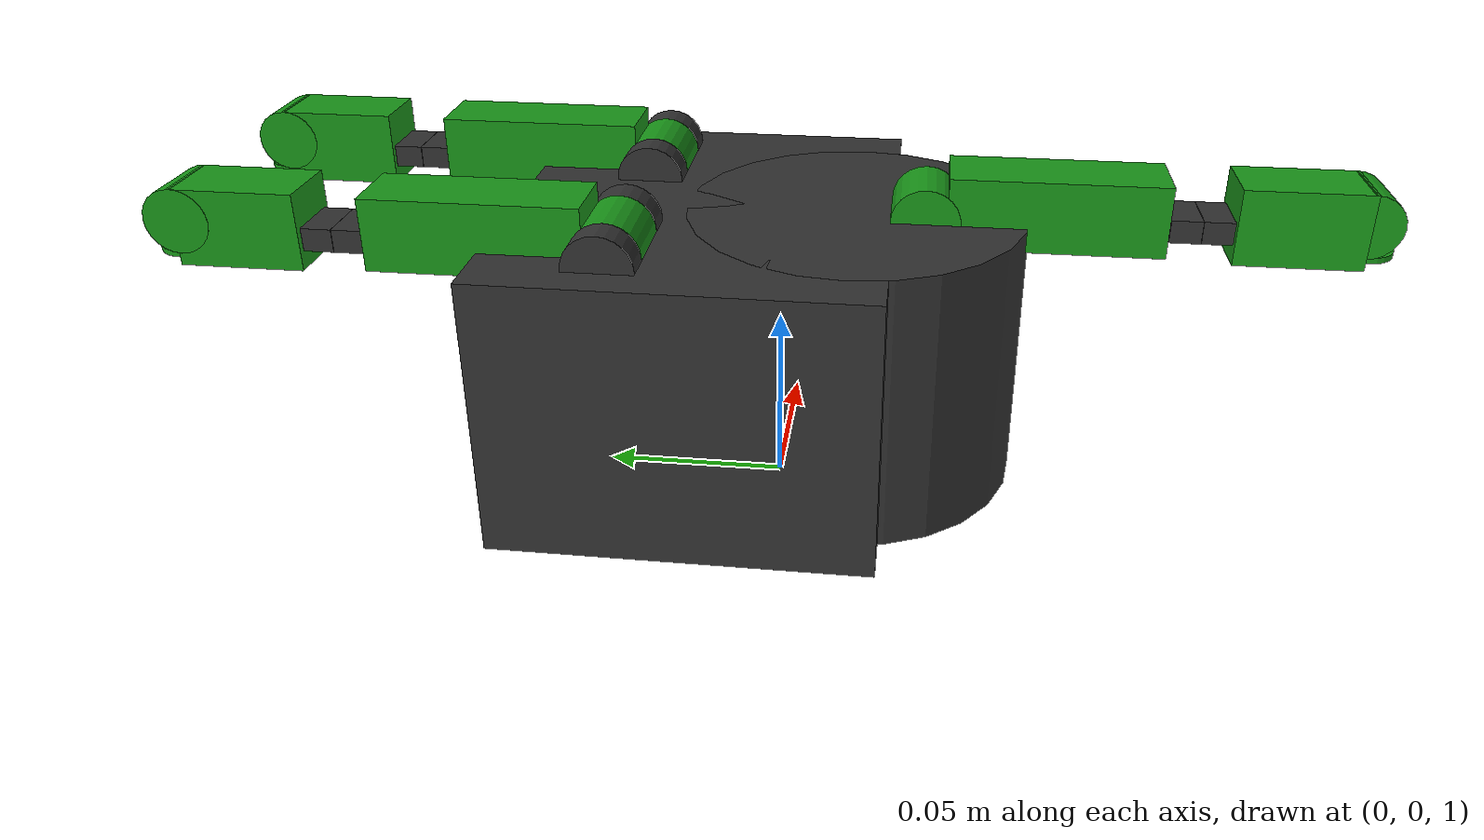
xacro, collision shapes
<robot xmlns:xacro="http://www.ros.org/wiki/xacro" name="atlas" >
  <xacro:include filename="$(find irobot_hand_description)/urdf/irobot_hand.urdf.xacro" />

  <link name="world"/>

  <xacro:irobot_hand side="left" parent="world" reflect="-1">
    <origin rpy="0 0 0" xyz="0 0 1.0"/>
  </xacro:irobot_hand>
</robot>

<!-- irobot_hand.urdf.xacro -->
<robot xmlns:xacro="http://www.ros.org/wiki/xacro" name="armh_handle">

<!-- roslaunch urdf_tutorial display.launch model:=handle.urdf gui:=True -->
<!-- rosrun xacro xacro.py handle_urdf.xacro > handle.urdf -->
<!-- tip: use measurements from solid to find the origins and length -->

<xacro:property name="flex_joint_length" value=".016" />
<xacro:property name="flex_joint_steps" value="2" />
<xacro:property name="proximal_link_length" value=".062" />
<xacro:property name="pi" value="3.14" />
<xacro:property name="flex_offset" value="0.003"/> <!--${0.5*flex_joint_length/flex_joint_steps}-->

<xacro:macro name="flex_link" params="side finger_id link_id">
  <link name="${side}_finger[${finger_id}]/flexible_link_${link_id}">
    <inertial>
      <mass value="${0.0029 / (2 * flex_joint_steps + 1)}"/>
      <!-- gazebo -> cad mapping
           x -> y
           y -> z
           z -> x
      -->
      <origin xyz="0 0 0" rpy="${-pi/2} ${-pi/2} 0"/>
      <inertia ixx="8.8101e-8" ixy="0" ixz="0.0"
               iyy="${2.04906e-7 / (2 * flex_joint_steps + 1)}" iyz="0.0"
               izz="${2.65921e-7 / (2 * flex_joint_steps + 1)}"/>
    </inertial>
    <collision>
      <geometry>
        <box size=".014 ${(flex_joint_length/flex_joint_steps)*0.99} .006"/>
      </geometry>
      <origin xyz="0 0 0" rpy="${pi/2} 0 0"/>
    </collision>
    <visual>
      <geometry>
        <box size=".014 ${(flex_joint_length/flex_joint_steps)*0.99} .006"/>
      </geometry>
      <origin xyz="0 0 0" rpy="${pi/2} 0 0"/>
      <material name="darkgray">
        <color rgba="0.2 0.2 0.2 1"/>
      </material>
    </visual>
  </link>

</xacro:macro>

<xacro:macro name="flex_joint" params="side finger_id link_from link_to">
  <gazebo reference="${side}_finger[${finger_id}]/flexible_joint_flex_from_${link_from}_to_${link_to}">
    <implicitSpringDamper>1</implicitSpringDamper>
  </gazebo>
  <joint name="${side}_finger[${finger_id}]/flexible_joint_flex_from_${link_from}_to_${link_to}" type="revolute">
    <parent link="${side}_finger[${finger_id}]/flexible_link_${link_from}"/>
    <child link="${side}_finger[${finger_id}]/flexible_link_hidden_between_${link_from}_and_${link_to}"/>
    <origin xyz="0 0 ${flex_joint_length/flex_joint_steps}" />
    <axis xyz="-1 0 0"/>
    <limit effort="1000.0" lower="0.0" upper="${pi/2}" velocity="0.5"/>
  </joint>
  <link name="${side}_finger[${finger_id}]/flexible_link_hidden_between_${link_from}_and_${link_to}">
    <inertial>
      <mass value="${0.0029 / (2 * flex_joint_steps + 1)}"/>
      <!-- gazebo -> cad mapping
           x -> y
           y -> z
           z -> x
      -->
      <origin xyz="0 0 0" rpy="${-pi/2} ${-pi/2} 0"/>
      <inertia ixx="8.8101e-8" ixy="0" ixz="0.0"
               iyy="${2.04906e-7 / (2 * flex_joint_steps + 1)}" iyz="0.0"
               izz="${2.65921e-7 / (2 * flex_joint_steps + 1)}"/>
    </inertial>
    <collision>
      <geometry>
        <box size="0 0 0"/>
      </geometry>
      <origin xyz="0 0 0" rpy="0 0 0"/>
    </collision>
    <visual>
      <geometry>
        <box size="0 0 0"/>
      </geometry>
      <origin xyz="0 0 0" rpy="0 0 0"/>
    </visual>
  </link>
  <gazebo reference="${side}_finger[${finger_id}]/flexible_joint_twist_from_${link_from}_to_${link_to}">
    <implicitSpringDamper>1</implicitSpringDamper>
  </gazebo>
  <joint name="${side}_finger[${finger_id}]/flexible_joint_twist_from_${link_from}_to_${link_to}" type="revolute">
    <parent link="${side}_finger[${finger_id}]/flexible_link_hidden_between_${link_from}_and_${link_to}"/>
    <child link="${side}_finger[${finger_id}]/flexible_link_${link_to}"/>
    <origin xyz="0 0 0" />
    <axis xyz="0 0 1"/>
    <limit effort="1000.0" lower="0.0" upper="${pi/2}" velocity="0.5"/>
  </joint>
</xacro:macro>

<xacro:macro name="flex_joint_connector" params="side finger_id">

  <!-- make a connection between proximal to flexible-->
  <gazebo reference="${side}_finger[${finger_id}]/flexible_joint_flex_from_proximal_to_1">
    <implicitSpringDamper>1</implicitSpringDamper>
  </gazebo>
  <joint name="${side}_finger[${finger_id}]/flexible_joint_flex_from_proximal_to_1" type="revolute">
    <parent link="${side}_finger[${finger_id}]/proximal_link"/>
    <child link="${side}_finger[${finger_id}]/flexible_link_hidden_between_proximal_link_and_1"/>
    <origin xyz="0 0 ${proximal_link_length + flex_offset}" />
    <axis xyz="-1 0 0"/>
    <limit effort="1000.0" lower="0.0" upper="${pi/2}" velocity="0.5"/>
  </joint>
  <link name="${side}_finger[${finger_id}]/flexible_link_hidden_between_proximal_link_and_1">
    <inertial>
      <mass value="${0.0029 / (2 * flex_joint_steps + 1)}"/>
      <!-- gazebo -> cad mapping
           x -> y
           y -> z
           z -> x
      -->
      <origin xyz="0 0 0" rpy="${-pi/2} ${-pi/2} 0"/>
      <inertia ixx="8.8101e-8" ixy="0" ixz="0.0"
               iyy="${2.04906e-7 / (2 * flex_joint_steps + 1)}" iyz="0.0"
               izz="${2.65921e-7 / (2 * flex_joint_steps + 1)}"/>
    </inertial>
    <collision>
      <geometry>
        <box size="0 0 0"/>
      </geometry>
      <origin xyz="0 0 0" rpy="0 0 0"/>
    </collision>
    <visual>
      <geometry>
        <box size="0 0 0"/>
      </geometry>
      <origin xyz="0 0 0" rpy="0 0 0"/>
    </visual>
  </link>
  <gazebo reference="${side}_finger[${finger_id}]/flexible_joint_twist_from_proximal_to_1">
    <implicitSpringDamper>1</implicitSpringDamper>
  </gazebo>
  <joint name="${side}_finger[${finger_id}]/flexible_joint_twist_from_proximal_to_1" type="revolute">
    <parent link="${side}_finger[${finger_id}]/flexible_link_hidden_between_proximal_link_and_1"/>
    <child link="${side}_finger[${finger_id}]/flexible_link_1"/>
    <origin xyz="0 0 0" />
    <axis xyz="0 0 1"/>
    <limit effort="1000.0" lower="0.0" upper="${pi/2}" velocity="0.5"/>
  </joint>

  <!-- make a connection between flexible to distal-->
  <gazebo reference="${side}_finger[${finger_id}]/flexible_joint_flex_from_${flex_joint_steps}_to_distal">
    <implicitSpringDamper>1</implicitSpringDamper>
  </gazebo>
  <joint name="${side}_finger[${finger_id}]/flexible_joint_flex_from_${flex_joint_steps}_to_distal" type="revolute">
    <parent link="${side}_finger[${finger_id}]/flexible_link_${flex_joint_steps}"/>
    <child link="${side}_finger[${finger_id}]/flexible_link_hidden_between_${flex_joint_steps}_and_distal_link"/>
    <origin xyz="0 0 ${flex_joint_length/flex_joint_steps - flex_offset}" />
    <axis xyz="-1 0 0"/>
    <limit effort="1000.0" lower="0.0" upper="${pi/2}" velocity="0.5"/>
  </joint>
  <link name="${side}_finger[${finger_id}]/flexible_link_hidden_between_${flex_joint_steps}_and_distal_link">
    <inertial>
      <mass value="${0.0029 / (2 * flex_joint_steps + 1)}"/>
      <!-- gazebo -> cad mapping
           x -> y
           y -> z
           z -> x
      -->
      <origin xyz="0 0 0" rpy="${-pi/2} ${-pi/2} 0"/>
      <inertia ixx="8.8101e-8" ixy="0" ixz="0.0"
               iyy="${2.04906e-7 / (2 * flex_joint_steps + 1)}" iyz="0.0"
               izz="${2.65921e-7 / (2 * flex_joint_steps + 1)}"/>
    </inertial>
    <collision>
      <geometry>
        <box size="0 0 0"/>
      </geometry>
      <origin xyz="0 0 0" rpy="0 0 0"/>
    </collision>
    <visual>
      <geometry>
        <box size="0 0 0"/>
      </geometry>
      <origin xyz="0 0 0" rpy="0 0 0"/>
    </visual>
  </link>
  <gazebo reference="${side}_finger[${finger_id}]/flexible_joint_twist_from_${flex_joint_steps}_to_distal">
    <implicitSpringDamper>1</implicitSpringDamper>
  </gazebo>
  <joint name="${side}_finger[${finger_id}]/flexible_joint_twist_from_${flex_joint_steps}_to_distal" type="revolute">
    <parent link="${side}_finger[${finger_id}]/flexible_link_hidden_between_${flex_joint_steps}_and_distal_link"/>
    <child link="${side}_finger[${finger_id}]/distal_link"/>
    <origin xyz="0 0 0" />
    <axis xyz="0 0 1"/>
    <limit effort="1000.0" lower="0.0" upper="${pi/2}" velocity="0.5"/>
  </joint>
</xacro:macro>

<!-- Simplified collisions for the base_rotation_links on fingers 0 and 1 -->
<xacro:macro name="base_rotation_link_collisions">
      <collision name='collision_1'>
        <origin xyz="0 0 -.0025" rpy="0 0 0"/>
        <geometry>
          <cylinder length="0.0145" radius="0.025"/>
        </geometry>
      </collision>

      <collision name='collision_2'>
        <origin xyz="0 0 -.0104" rpy="0 0 0"/>
        <geometry>
          <cylinder length="0.0145" radius="0.0165"/>
        </geometry>
      </collision>

      <collision name='collision_3'>
        <origin xyz="0 0 .0135" rpy="1.5707 0 1.5707"/>
        <geometry>
          <cylinder length="0.02" radius="0.002"/>
        </geometry>
      </collision>

      <collision name='collision_4'>
        <origin xyz="0.013 0 .0135" rpy="1.5707 0 1.5707"/>
        <geometry>
          <cylinder length="0.008" radius="0.009"/>
        </geometry>
      </collision>

      <collision name='collision_5'>
        <origin xyz="-0.013 0 .0135" rpy="1.5707 0 1.5707"/>
        <geometry>
          <cylinder length="0.008" radius="0.009"/>
        </geometry>
      </collision>
</xacro:macro>

<!-- Simplified collisions for the proximal_link on all fingers -->
<xacro:macro name="proximal_link_collisions">
      <collision name='collision1'>
        <origin xyz="0 0.0028 0.033" rpy="0 0 0"/>
        <geometry>
          <box size="0.018 0.019 0.055"/>
        </geometry>
      </collision>

      <collision name='collision2'>
        <origin xyz="0 0 0" rpy="0 1.5707 0"/>
        <geometry>
          <cylinder radius="0.009" length="0.018"/>
        </geometry>
      </collision>
</xacro:macro>

<!-- Simplified collisions for the distal_link on all fingers -->
<xacro:macro name="distal_link_collisions">
      <collision name='collision'>
        <origin xyz="0 0.0024 0.01476" rpy="3.141590 0.001593
             3.141590"/>
        <geometry>
          <box size="0.0175 0.02011 0.03195"/>
        </geometry>
      </collision>
      <collision name='collision_tip'>
        <origin xyz="0 0.004 0.03" rpy="1.57078 0.001593 1.57078"/>
        <geometry>
          <cylinder radius="0.00848" length="0.0175"/>
        </geometry>
      </collision>

      <collision name='collision_nail'>
        <origin xyz="0 -0.00529 0.032" rpy="1.57078 0.001593 0"/>
        <geometry>
          <cylinder radius="0.00750" length="0.00159"/>
        </geometry>
      </collision>
</xacro:macro>

<xacro:macro name="irobot_hand" params="side parent reflect *origin">
  <xacro:flex_link side="${side}" finger_id="0" link_id="1"/>
  <xacro:flex_link side="${side}" finger_id="0" link_id="2"/>
  <xacro:flex_joint side="${side}" finger_id="0" link_from="1" link_to="2"/>
  <xacro:flex_joint_connector side="${side}" finger_id="0" />

  <xacro:flex_link side="${side}" finger_id="1" link_id="1"/>
  <xacro:flex_link side="${side}" finger_id="1" link_id="2"/>
  <xacro:flex_joint side="${side}" finger_id="1" link_from="1" link_to="2"/>
  <xacro:flex_joint_connector side="${side}" finger_id="1" />

  <xacro:flex_link side="${side}" finger_id="2" link_id="1"/>
  <xacro:flex_link side="${side}" finger_id="2" link_id="2"/>
  <xacro:flex_joint side="${side}" finger_id="2" link_from="1" link_to="2"/>
  <xacro:flex_joint_connector side="${side}" finger_id="2" />

  <!-- joint attaching parent link to irobot hand -->
  <joint name="${side}_irobot_hand_joint" type="fixed">
    <xacro:insert_block name="origin"/>
    <parent link="${parent}"/>
    <child link="${side}_base_link"/>
  </joint>

  <link name="${side}_base_link">
      <inertial>
        <!-- needs update -->
        <mass value="1.305"/>
        <origin xyz="0 0 0"/>
        <inertia ixx="0.00125" ixy="0.0" ixz="0.0" iyy="0.00125" iyz="0.0" izz="0.0002"/>
      </inertial>

    <collision name='collision1'>
      <origin xyz="0 0.02 0.045" rpy="0 0 0"/>
      <geometry>
        <box size="0.114 0.1 0.075"/>
      </geometry>
    </collision>

    <collision name='collision2'>
      <origin xyz="0 -0.02 0.045" rpy="0 0 0"/>
      <geometry>
        <cylinder radius="0.0448" length="0.075"/>
      </geometry>
    </collision>

    <visual>
      <geometry>
        <mesh filename="package://irobot_hand_description/meshes/palm.stl"/>
      </geometry>
      <material name="darkgray">
        <color rgba="0.2 0.2 0.2 1"/>
      </material>
      <origin rpy="0 0 0" xyz="0 -0.038 -0.023"/>
    </visual>
  </link>

  <link name="${side}_finger[0]/base_rotation_link">
      <inertial>
        <!-- needs update -->
        <mass value="0.05"/>
        <origin xyz="0 0 0"/>
        <inertia ixx="0.0000125" ixy="0.0" ixz="0.0" iyy="0.0000125" iyz="0.0" izz="0.000002"/>
      </inertial>

    <xacro:base_rotation_link_collisions/>

    <visual>
      <geometry>
        <mesh filename="package://irobot_hand_description/meshes/finger_base.stl"/>
      </geometry>
      <material name="darkgray">
        <color rgba="0.2 0.2 0.2 1"/>
      </material>
      <origin rpy="${pi/2} 0 0" xyz="0 0 0"/>
    </visual>
  </link>

  <link name="${side}_finger[0]/proximal_link">
      <inertial>
        <mass value="0.0288"/>
        <!-- gazebo -> cad coordinate mapping
             x -> -y
             y -> -z
             z -> x
        -->
        <origin xyz="-0.002630 0.002396 0.021770" rpy="${pi/2} -${pi/2} 0"/>
        <inertia ixx="2.420689e-6" ixy="0" ixz="0" iyy="1.196202e-6" iyz="0" izz="1.2736461e-6"/>
      </inertial>

    <xacro:proximal_link_collisions/>

    <visual>
      <geometry>
        <mesh filename="package://irobot_hand_description/meshes/finger_proximal.stl"/>
      </geometry>
      <material name="green">
        <color rgba="0.1 0.6 0.1 1"/>
      </material>
      <origin rpy="${pi/2} -${pi/2} 0" xyz="0 0 0"/>
    </visual>
  </link>

  <link name="${side}_finger[0]/proximal_accelerometer" />

  <joint name="${side}_finger[0]/proximal_link_to_accelerometer" type="fixed">
    <parent link="${side}_finger[0]/proximal_link"/>
    <child link="${side}_finger[0]/proximal_accelerometer"/>
    <origin rpy="${pi/2} 0 0" xyz="0 0 0.05" />
  </joint>

  <link name="${side}_finger[0]/distal_link">
      <inertial>
        <mass value="0.0133"/>
        <!-- gazebo -> cad mapping
             x -> -x
             y -> y
             z -> -z
        -->
        <origin xyz="-0.000066 -0.003142 0.016633" rpy="0 ${pi} 0" />
        <inertia ixx="1.624140e-6" ixy="5.60e-10" ixz="1.33e-10" iyy="1.717885e-6" iyz="-1.19970e-7" izz="5.60221e-7"/>
      </inertial>

    <xacro:distal_link_collisions/>

    <visual>
      <geometry>
        <mesh filename="package://irobot_hand_description/meshes/finger_distal.stl"/>
      </geometry>
      <material name="green">
        <color rgba="0.1 0.6 0.1 1"/>
      </material>
      <origin rpy="0 ${pi} 0" xyz="0 0 0"/>
    </visual>
  </link>

  <link name="${side}_finger[0]/distal_accelerometer" />

  <joint name="${side}_finger[0]/distal_link_to_accelerometer" type="fixed">
    <parent link="${side}_finger[0]/distal_link"/>
    <child link="${side}_finger[0]/distal_accelerometer"/>
    <origin rpy="${pi/2} 0 0" xyz="0 0 0.02" />
  </joint>

  <link name="${side}_finger[1]/base_rotation_link">
      <inertial>
        <mass value="0.05"/>
        <origin xyz="0 0 0"/>
        <inertia ixx="0.0000125" ixy="0.0" ixz="0.0" iyy="0.0000125" iyz="0.0" izz="0.000002"/>
      </inertial>

    <xacro:base_rotation_link_collisions/>

    <visual>
      <geometry>
        <mesh filename="package://irobot_hand_description/meshes/finger_base.stl"/>
      </geometry>
      <material name="darkgray">
        <color rgba="0.2 0.2 0.2 1"/>
      </material>
      <origin rpy="${pi/2} 0 0" xyz="0 0 0"/>
    </visual>
  </link>

  <link name="${side}_finger[1]/proximal_link">
      <inertial>
        <mass value="0.0288"/>
        <!-- gazebo -> cad coordinate mapping
             x -> -y
             y -> -z
             z -> x
        -->
        <origin xyz="-0.002630 0.002396 0.021770" rpy="${pi/2} -${pi/2} 0"/>
        <inertia ixx="2.420689e-6" ixy="0" ixz="0" iyy="1.196202e-6" iyz="0" izz="1.2736461e-6"/>
      </inertial>

    <xacro:proximal_link_collisions/>

    <visual>
      <geometry>
        <mesh filename="package://irobot_hand_description/meshes/finger_proximal.stl"/>
      </geometry>
      <material name="green">
        <color rgba="0.1 0.6 0.1 1"/>
      </material>
      <origin rpy="${pi/2} -${pi/2} 0" xyz="0 0 0"/>
    </visual>
  </link>

  <link name="${side}_finger[1]/proximal_accelerometer" />

  <joint name="${side}_finger[1]/proximal_link_to_accelerometer" type="fixed">
    <parent link="${side}_finger[1]/proximal_link"/>
    <child link="${side}_finger[1]/proximal_accelerometer"/>
    <origin rpy="${pi/2} 0 0" xyz="0 0 0.05" />
  </joint>

  <link name="${side}_finger[1]/distal_link">
      <inertial>
        <mass value="0.0133"/>
        <!-- gazebo -> cad mapping
             x -> -x
             y -> y
             z -> -z
        -->
        <origin xyz="-0.000066 -0.003142 0.016633" rpy="0 ${pi} 0" />
        <inertia ixx="1.624140e-6" ixy="5.60e-10" ixz="1.33e-10" iyy="1.717885e-6" iyz="-1.19970e-7" izz="5.60221e-7"/>
      </inertial>

    <xacro:distal_link_collisions/>

    <visual>
      <geometry>
        <mesh filename="package://irobot_hand_description/meshes/finger_distal.stl"/>
      </geometry>
      <material name="green">
        <color rgba="0.1 0.6 0.1 1"/>
      </material>
      <origin rpy="0 ${pi} 0" xyz="0 0 0"/>
    </visual>
  </link>

  <link name="${side}_finger[1]/distal_accelerometer" />

  <joint name="${side}_finger[1]/distal_link_to_accelerometer" type="fixed">
    <parent link="${side}_finger[1]/distal_link"/>
    <child link="${side}_finger[1]/distal_accelerometer"/>
    <origin rpy="${pi/2} 0 0" xyz="0 0 0.02" />
  </joint>

  <link name="${side}_finger[2]/proximal_link">
      <inertial>
        <mass value="0.0288"/>
        <!-- gazebo -> cad coordinate mapping
             x -> -y
             y -> -z
             z -> x
        -->
        <origin xyz="-0.002630 0.002396 0.021770" rpy="${pi/2} -${pi/2} 0"/>
        <inertia ixx="2.420689e-6" ixy="0" ixz="0" iyy="1.196202e-6" iyz="0" izz="1.2736461e-6"/>
      </inertial>

    <xacro:proximal_link_collisions/>

    <visual>
      <geometry>
        <mesh filename="package://irobot_hand_description/meshes/finger_proximal.stl"/>
      </geometry>
      <material name="green">
        <color rgba="0.1 0.6 0.1 1"/>
      </material>
      <origin rpy="${pi/2} -${pi/2} 0" xyz="0 0 0"/>
    </visual>
  </link>

  <link name="${side}_finger[2]/proximal_accelerometer" />

  <joint name="${side}_finger[2]/proximal_link_to_accelerometer" type="fixed">
    <parent link="${side}_finger[2]/proximal_link"/>
    <child link="${side}_finger[2]/proximal_accelerometer"/>
    <origin rpy="${pi/2} 0 0" xyz="0 0 0.05" />
  </joint>

  <link name="${side}_finger[2]/distal_link">
      <inertial>
        <mass value="0.0133"/>
        <!-- gazebo -> cad mapping
             x -> -x
             y -> y
             z -> -z
        -->
        <origin xyz="-0.000066 -0.003142 0.016633" rpy="0 ${pi} 0" />
        <inertia ixx="1.624140e-6" ixy="5.60e-10" ixz="1.33e-10" iyy="1.717885e-6" iyz="-1.19970e-7" izz="5.60221e-7"/>
      </inertial>

    <xacro:distal_link_collisions/>

    <visual>
      <geometry>
        <mesh filename="package://irobot_hand_description/meshes/finger_distal.stl"/>
      </geometry>
      <material name="green">
        <color rgba="0.1 0.6 0.1 1"/>
      </material>
      <origin rpy="0 ${pi} 0" xyz="0 0 0"/>
    </visual>
  </link>

  <link name="${side}_finger[2]/distal_accelerometer" />

  <joint name="${side}_finger[2]/distal_link_to_accelerometer" type="fixed">
    <parent link="${side}_finger[2]/distal_link"/>
    <child link="${side}_finger[2]/distal_accelerometer"/>
    <origin rpy="${pi/2} 0 0" xyz="0 0 0.02" />
  </joint>

  <gazebo reference="${side}_finger[0]/joint_base_rotation">
    <implicitSpringDamper>1</implicitSpringDamper>
  </gazebo>
  <joint name="${side}_finger[0]/joint_base_rotation" type="revolute">
    <parent link="${side}_base_link"/>
    <child link="${side}_finger[0]/base_rotation_link"/>
    <origin xyz="0.03075 0.038 0.069477" rpy="0 0 0" />
    <axis xyz="0 0 -1"/>
    <limit effort="1000.0" lower="0.0" upper="${pi/2}" velocity="0.5"/>
  </joint>

  <gazebo reference="${side}_finger[0]/joint_base">
    <implicitSpringDamper>1</implicitSpringDamper>
  </gazebo>
  <joint name="${side}_finger[0]/joint_base" type="revolute">
    <parent link="${side}_finger[0]/base_rotation_link"/>
    <child link="${side}_finger[0]/proximal_link"/>
    <origin xyz="0 0 0.0135" rpy="${pi/2} 0 -${pi}" />
    <axis xyz="-1 0 0"/>
    <limit effort="1000.0" lower="0.0" upper="${7*pi/8}" velocity="0.5"/>

  </joint>
  <gazebo reference="${side}_finger[1]/joint_base_rotation">
    <implicitSpringDamper>1</implicitSpringDamper>
  </gazebo>

  <joint name="${side}_finger[1]/joint_base_rotation" type="revolute">
    <parent link="${side}_base_link"/>
    <child link="${side}_finger[1]/base_rotation_link"/>
    <origin xyz="-0.03075 0.038 0.069477" rpy="0 0 0" />
    <axis xyz="0 0 1"/>
    <limit effort="1000.0" lower="0.0" upper="${pi/2}" velocity="0.5"/>
  </joint>

  <gazebo>
    <joint name="${side}_spread_gearbox" type="gearbox">
      <parent>${side}_finger[0]/base_rotation_link</parent>
      <child>${side}_finger[1]/base_rotation_link</child>
      <gearbox_reference_body>${parent}</gearbox_reference_body>
      <gearbox_ratio>1.0</gearbox_ratio>
      <axis>
        <!-- yikes, what coordinate frame is this specified in?
             0 0 1 causes NaNs. 0 1 0 works, but unsure why yet.-->
        <xyz>0 1 0</xyz>
      </axis>
      <axis2>
        <!-- yikes, what coordinate frame is this specified in?
             0 0 1 causes NaNs. 0 1 0 works, but unsure why yet.-->
        <xyz>0 1 0</xyz>
      </axis2>
    </joint>
  </gazebo>

  <gazebo reference="${side}_finger[1]/joint_base">
    <implicitSpringDamper>1</implicitSpringDamper>
  </gazebo>
  <joint name="${side}_finger[1]/joint_base" type="revolute">
    <parent link="${side}_finger[1]/base_rotation_link"/>
    <child link="${side}_finger[1]/proximal_link"/>
    <origin xyz="0 0 0.0135" rpy="${pi/2} 0 -${pi}" />
    <axis xyz="-1 0 0"/>
    <limit effort="1000.0" lower="0.0" upper="${7*pi/8}" velocity="0.5"/>
  </joint>

  <gazebo reference="${side}_finger[2]/joint_base">
    <implicitSpringDamper>1</implicitSpringDamper>
  </gazebo>
  <joint name="${side}_finger[2]/joint_base" type="revolute">
    <parent link="${side}_base_link"/>
    <child link="${side}_finger[2]/proximal_link"/>
    <origin xyz="0 -0.038 0.082755" rpy="${pi/2} 0 0" />
    <axis xyz="-1 0 0"/>
    <limit effort="1000.0" lower="0.0" upper="${7*pi/8}" velocity="0.5"/>
  </joint>
</xacro:macro>

</robot>
